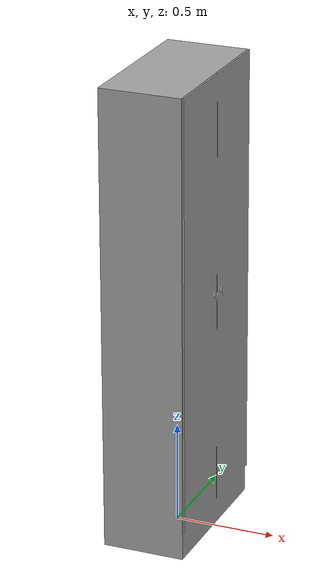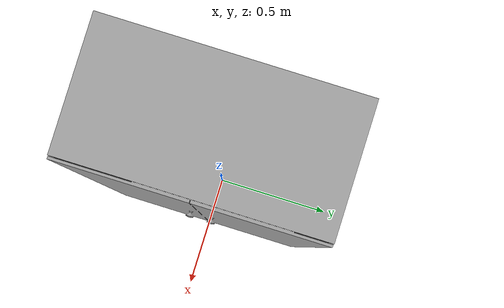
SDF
<?xml version="1.0" ?>
<sdf version="1.0">
  <model name="locker_high">
    <static>true</static>
    <link name="locker_high">
      <collision name="locker_high">
        <pose>0 0 1.1500 0 0 0</pose>
        <geometry>
          <box>
            <size>0.4400 0.8000 2.3000</size>
          </box>
        </geometry>
      </collision>

      <visual name="locker_high_mesh">
	  <cast_shadows>true</cast_shadows>
        <geometry>
          <mesh>
	        <uri>model://locker_high/meshes/model.dae</uri>
	      </mesh>
        </geometry>
      </visual>
    </link>
  </model>
</sdf>
